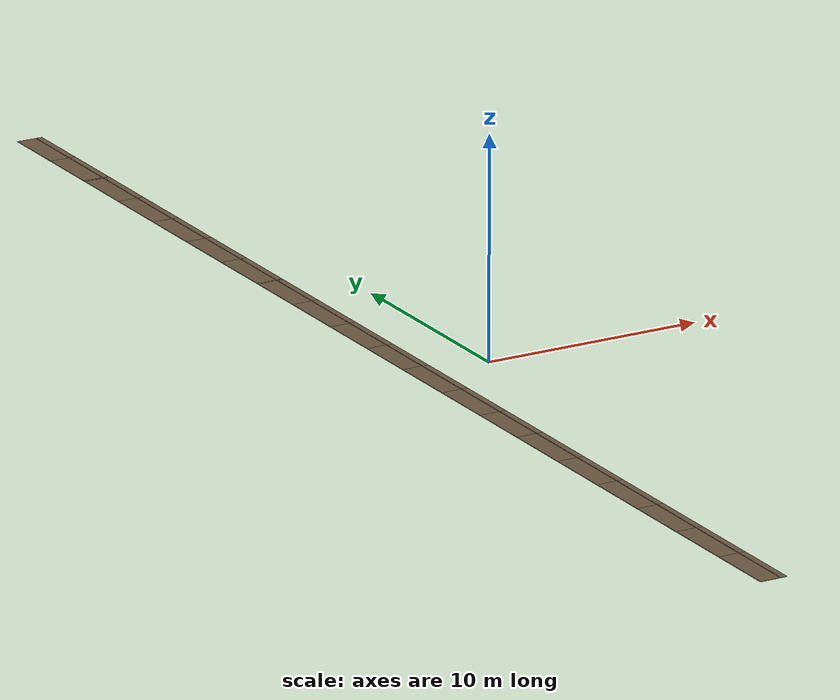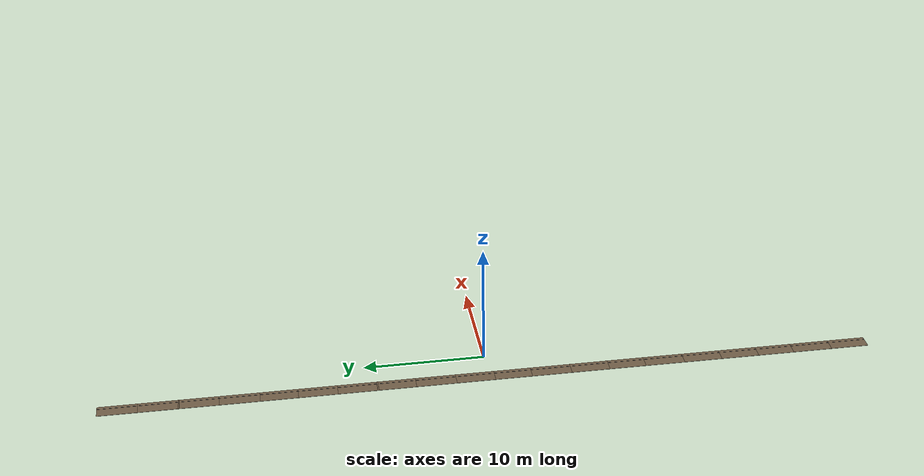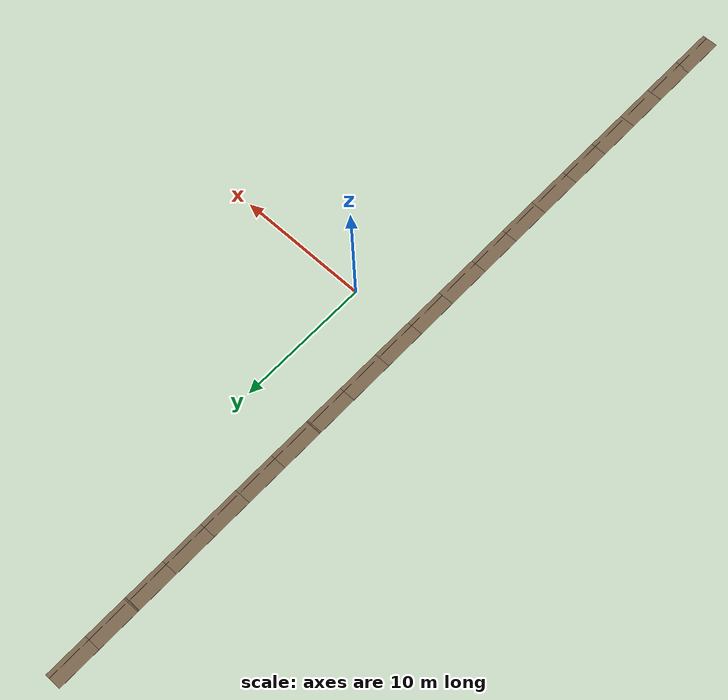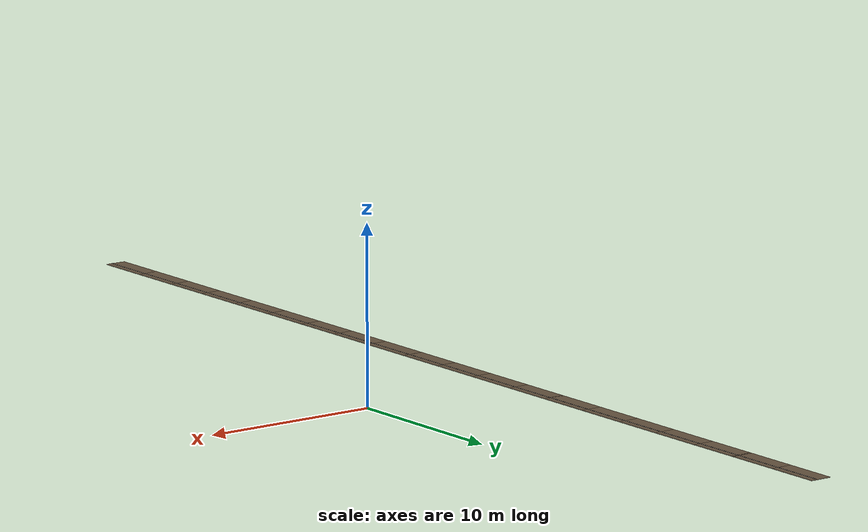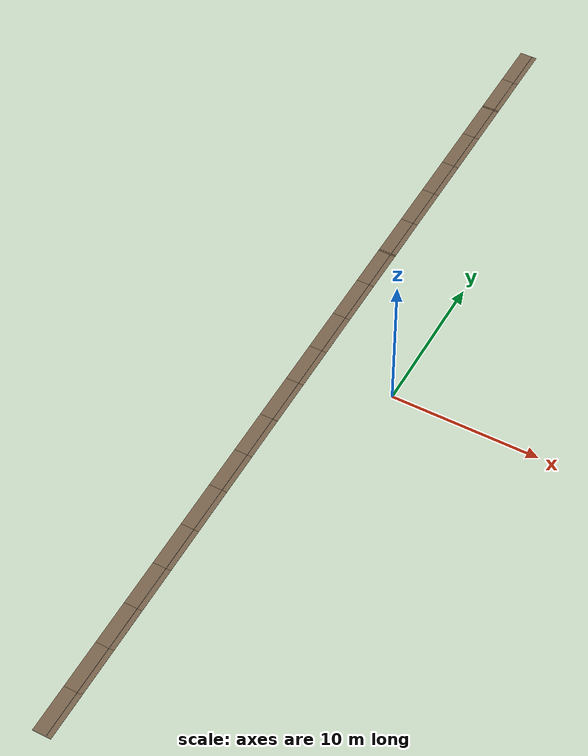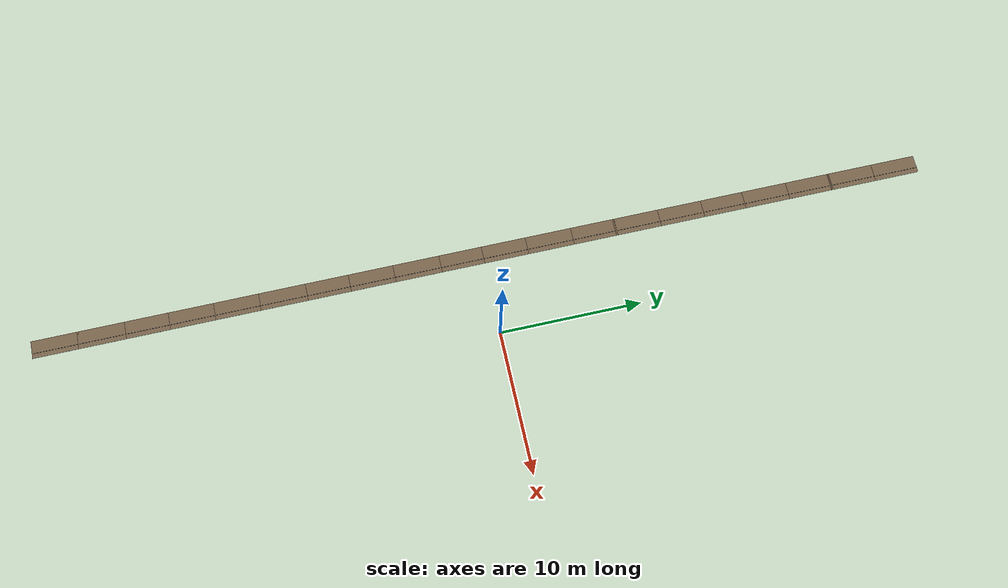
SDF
<sdf version="1.9">
 <world name="orchard_10x41">
  <model name="understory_r3">
   <static>true</static>
   <link name="link">
    <visual name="soil_1">
     <pose>-5.250 -29.450 1.633 -0.0000 0.0000 0.0000</pose>
     <geometry><box><size>1.2000 3.2240 0.0300</size></box></geometry>
     <material>
      <ambient>0.400 0.330 0.250 1</ambient>
      <diffuse>0.440 0.363 0.275 1</diffuse>
      <specular>0.120 0.099 0.075 1</specular>
     </material>
     <plugin filename="gz-sim-label-system" name="gz::sim::systems::Label"><label>66</label></plugin>
    </visual>
    <visual name="soil_2">
     <pose>-5.250 -26.350 1.633 0.0000 0.0000 0.0000</pose>
     <geometry><box><size>1.2000 3.2240 0.0300</size></box></geometry>
     <material>
      <ambient>0.400 0.330 0.250 1</ambient>
      <diffuse>0.440 0.363 0.275 1</diffuse>
      <specular>0.120 0.099 0.075 1</specular>
     </material>
     <plugin filename="gz-sim-label-system" name="gz::sim::systems::Label"><label>66</label></plugin>
    </visual>
    <visual name="soil_3">
     <pose>-5.250 -23.250 1.633 0.0004 0.0000 0.0000</pose>
     <geometry><box><size>1.2000 3.2240 0.0300</size></box></geometry>
     <material>
      <ambient>0.400 0.330 0.250 1</ambient>
      <diffuse>0.440 0.363 0.275 1</diffuse>
      <specular>0.120 0.099 0.075 1</specular>
     </material>
     <plugin filename="gz-sim-label-system" name="gz::sim::systems::Label"><label>66</label></plugin>
    </visual>
    <visual name="soil_4">
     <pose>-5.250 -20.150 1.634 0.0002 0.0000 0.0000</pose>
     <geometry><box><size>1.2000 3.2240 0.0300</size></box></geometry>
     <material>
      <ambient>0.400 0.330 0.250 1</ambient>
      <diffuse>0.440 0.363 0.275 1</diffuse>
      <specular>0.120 0.099 0.075 1</specular>
     </material>
     <plugin filename="gz-sim-label-system" name="gz::sim::systems::Label"><label>66</label></plugin>
    </visual>
    <visual name="soil_5">
     <pose>-5.250 -17.050 1.636 0.0008 0.0000 0.0000</pose>
     <geometry><box><size>1.2000 3.2240 0.0300</size></box></geometry>
     <material>
      <ambient>0.400 0.330 0.250 1</ambient>
      <diffuse>0.440 0.363 0.275 1</diffuse>
      <specular>0.120 0.099 0.075 1</specular>
     </material>
     <plugin filename="gz-sim-label-system" name="gz::sim::systems::Label"><label>66</label></plugin>
    </visual>
    <visual name="soil_6">
     <pose>-5.250 -13.950 1.638 0.0004 0.0000 0.0000</pose>
     <geometry><box><size>1.2000 3.2240 0.0300</size></box></geometry>
     <material>
      <ambient>0.400 0.330 0.250 1</ambient>
      <diffuse>0.440 0.363 0.275 1</diffuse>
      <specular>0.120 0.099 0.075 1</specular>
     </material>
     <plugin filename="gz-sim-label-system" name="gz::sim::systems::Label"><label>66</label></plugin>
    </visual>
    <visual name="soil_7">
     <pose>-5.250 -10.850 1.638 0.0002 0.0000 0.0000</pose>
     <geometry><box><size>1.2000 3.2240 0.0300</size></box></geometry>
     <material>
      <ambient>0.400 0.330 0.250 1</ambient>
      <diffuse>0.440 0.363 0.275 1</diffuse>
      <specular>0.120 0.099 0.075 1</specular>
     </material>
     <plugin filename="gz-sim-label-system" name="gz::sim::systems::Label"><label>66</label></plugin>
    </visual>
    <visual name="soil_8">
     <pose>-5.250 -7.750 1.637 -0.0010 0.0000 0.0000</pose>
     <geometry><box><size>1.2000 3.2240 0.0300</size></box></geometry>
     <material>
      <ambient>0.400 0.330 0.250 1</ambient>
      <diffuse>0.440 0.363 0.275 1</diffuse>
      <specular>0.120 0.099 0.075 1</specular>
     </material>
     <plugin filename="gz-sim-label-system" name="gz::sim::systems::Label"><label>66</label></plugin>
    </visual>
    <visual name="soil_9">
     <pose>-5.250 -4.650 1.635 -0.0006 0.0000 0.0000</pose>
     <geometry><box><size>1.2000 3.2240 0.0300</size></box></geometry>
     <material>
      <ambient>0.400 0.330 0.250 1</ambient>
      <diffuse>0.440 0.363 0.275 1</diffuse>
      <specular>0.120 0.099 0.075 1</specular>
     </material>
     <plugin filename="gz-sim-label-system" name="gz::sim::systems::Label"><label>66</label></plugin>
    </visual>
    <visual name="soil_10">
     <pose>-5.250 -1.550 1.633 -0.0004 0.0000 0.0000</pose>
     <geometry><box><size>1.2000 3.2240 0.0300</size></box></geometry>
     <material>
      <ambient>0.400 0.330 0.250 1</ambient>
      <diffuse>0.440 0.363 0.275 1</diffuse>
      <specular>0.120 0.099 0.075 1</specular>
     </material>
     <plugin filename="gz-sim-label-system" name="gz::sim::systems::Label"><label>66</label></plugin>
    </visual>
    <visual name="soil_11">
     <pose>-5.250 1.550 1.632 -0.0003 0.0000 0.0000</pose>
     <geometry><box><size>1.2000 3.2240 0.0300</size></box></geometry>
     <material>
      <ambient>0.400 0.330 0.250 1</ambient>
      <diffuse>0.440 0.363 0.275 1</diffuse>
      <specular>0.120 0.099 0.075 1</specular>
     </material>
     <plugin filename="gz-sim-label-system" name="gz::sim::systems::Label"><label>66</label></plugin>
    </visual>
    <visual name="soil_12">
     <pose>-5.250 4.650 1.631 -0.0005 0.0000 0.0000</pose>
     <geometry><box><size>1.2000 3.2240 0.0300</size></box></geometry>
     <material>
      <ambient>0.400 0.330 0.250 1</ambient>
      <diffuse>0.440 0.363 0.275 1</diffuse>
      <specular>0.120 0.099 0.075 1</specular>
     </material>
     <plugin filename="gz-sim-label-system" name="gz::sim::systems::Label"><label>66</label></plugin>
    </visual>
    <visual name="soil_13">
     <pose>-5.250 7.750 1.629 -0.0004 0.0000 0.0000</pose>
     <geometry><box><size>1.2000 3.2240 0.0300</size></box></geometry>
     <material>
      <ambient>0.400 0.330 0.250 1</ambient>
      <diffuse>0.440 0.363 0.275 1</diffuse>
      <specular>0.120 0.099 0.075 1</specular>
     </material>
     <plugin filename="gz-sim-label-system" name="gz::sim::systems::Label"><label>66</label></plugin>
    </visual>
    <visual name="soil_14">
     <pose>-5.250 10.850 1.627 -0.0009 0.0000 0.0000</pose>
     <geometry><box><size>1.2000 3.2240 0.0300</size></box></geometry>
     <material>
      <ambient>0.400 0.330 0.250 1</ambient>
      <diffuse>0.440 0.363 0.275 1</diffuse>
      <specular>0.120 0.099 0.075 1</specular>
     </material>
     <plugin filename="gz-sim-label-system" name="gz::sim::systems::Label"><label>66</label></plugin>
    </visual>
    <visual name="soil_15">
     <pose>-5.250 13.950 1.624 -0.0009 0.0000 0.0000</pose>
     <geometry><box><size>1.2000 3.2240 0.0300</size></box></geometry>
     <material>
      <ambient>0.400 0.330 0.250 1</ambient>
      <diffuse>0.440 0.363 0.275 1</diffuse>
      <specular>0.120 0.099 0.075 1</specular>
     </material>
     <plugin filename="gz-sim-label-system" name="gz::sim::systems::Label"><label>66</label></plugin>
    </visual>
    <visual name="soil_16">
     <pose>-5.250 17.050 1.622 -0.0003 0.0000 0.0000</pose>
     <geometry><box><size>1.2000 3.2240 0.0300</size></box></geometry>
     <material>
      <ambient>0.400 0.330 0.250 1</ambient>
      <diffuse>0.440 0.363 0.275 1</diffuse>
      <specular>0.120 0.099 0.075 1</specular>
     </material>
     <plugin filename="gz-sim-label-system" name="gz::sim::systems::Label"><label>66</label></plugin>
    </visual>
    <visual name="soil_17">
     <pose>-5.250 20.150 1.622 0.0002 0.0000 0.0000</pose>
     <geometry><box><size>1.2000 3.2240 0.0300</size></box></geometry>
     <material>
      <ambient>0.400 0.330 0.250 1</ambient>
      <diffuse>0.440 0.363 0.275 1</diffuse>
      <specular>0.120 0.099 0.075 1</specular>
     </material>
     <plugin filename="gz-sim-label-system" name="gz::sim::systems::Label"><label>66</label></plugin>
    </visual>
    <visual name="soil_18">
     <pose>-5.250 23.250 1.624 0.0011 0.0000 0.0000</pose>
     <geometry><box><size>1.2000 3.2240 0.0300</size></box></geometry>
     <material>
      <ambient>0.400 0.330 0.250 1</ambient>
      <diffuse>0.440 0.363 0.275 1</diffuse>
      <specular>0.120 0.099 0.075 1</specular>
     </material>
     <plugin filename="gz-sim-label-system" name="gz::sim::systems::Label"><label>66</label></plugin>
    </visual>
    <visual name="soil_19">
     <pose>-5.250 26.350 1.626 0.0002 0.0000 0.0000</pose>
     <geometry><box><size>1.2000 3.2240 0.0300</size></box></geometry>
     <material>
      <ambient>0.400 0.330 0.250 1</ambient>
      <diffuse>0.440 0.363 0.275 1</diffuse>
      <specular>0.120 0.099 0.075 1</specular>
     </material>
     <plugin filename="gz-sim-label-system" name="gz::sim::systems::Label"><label>66</label></plugin>
    </visual>
    <visual name="soil_20">
     <pose>-5.250 29.450 1.626 0.0001 0.0000 0.0000</pose>
     <geometry><box><size>1.2000 3.2240 0.0300</size></box></geometry>
     <material>
      <ambient>0.400 0.330 0.250 1</ambient>
      <diffuse>0.440 0.363 0.275 1</diffuse>
      <specular>0.120 0.099 0.075 1</specular>
     </material>
     <plugin filename="gz-sim-label-system" name="gz::sim::systems::Label"><label>66</label></plugin>
    </visual>
    <visual name="drip_21">
     <pose>-4.970 -29.450 1.663 1.5708 0.0000 0.0000</pose>
     <geometry><cylinder><radius>0.0110</radius><length>3.1620</length></cylinder></geometry>
     <material>
      <ambient>0.100 0.100 0.110 1</ambient>
      <diffuse>0.110 0.110 0.121 1</diffuse>
      <specular>0.030 0.030 0.033 1</specular>
     </material>
     <plugin filename="gz-sim-label-system" name="gz::sim::systems::Label"><label>67</label></plugin>
    </visual>
    <visual name="drip_22">
     <pose>-4.970 -26.350 1.663 1.5708 0.0000 0.0000</pose>
     <geometry><cylinder><radius>0.0110</radius><length>3.1620</length></cylinder></geometry>
     <material>
      <ambient>0.100 0.100 0.110 1</ambient>
      <diffuse>0.110 0.110 0.121 1</diffuse>
      <specular>0.030 0.030 0.033 1</specular>
     </material>
     <plugin filename="gz-sim-label-system" name="gz::sim::systems::Label"><label>67</label></plugin>
    </visual>
    <visual name="drip_23">
     <pose>-4.970 -23.250 1.663 1.5712 0.0000 0.0000</pose>
     <geometry><cylinder><radius>0.0110</radius><length>3.1620</length></cylinder></geometry>
     <material>
      <ambient>0.100 0.100 0.110 1</ambient>
      <diffuse>0.110 0.110 0.121 1</diffuse>
      <specular>0.030 0.030 0.033 1</specular>
     </material>
     <plugin filename="gz-sim-label-system" name="gz::sim::systems::Label"><label>67</label></plugin>
    </visual>
    <visual name="drip_24">
     <pose>-4.970 -20.150 1.664 1.5710 0.0000 0.0000</pose>
     <geometry><cylinder><radius>0.0110</radius><length>3.1620</length></cylinder></geometry>
     <material>
      <ambient>0.100 0.100 0.110 1</ambient>
      <diffuse>0.110 0.110 0.121 1</diffuse>
      <specular>0.030 0.030 0.033 1</specular>
     </material>
     <plugin filename="gz-sim-label-system" name="gz::sim::systems::Label"><label>67</label></plugin>
    </visual>
    <visual name="drip_25">
     <pose>-4.970 -17.050 1.666 1.5716 0.0000 0.0000</pose>
     <geometry><cylinder><radius>0.0110</radius><length>3.1620</length></cylinder></geometry>
     <material>
      <ambient>0.100 0.100 0.110 1</ambient>
      <diffuse>0.110 0.110 0.121 1</diffuse>
      <specular>0.030 0.030 0.033 1</specular>
     </material>
     <plugin filename="gz-sim-label-system" name="gz::sim::systems::Label"><label>67</label></plugin>
    </visual>
    <visual name="drip_26">
     <pose>-4.970 -13.950 1.668 1.5712 0.0000 0.0000</pose>
     <geometry><cylinder><radius>0.0110</radius><length>3.1620</length></cylinder></geometry>
     <material>
      <ambient>0.100 0.100 0.110 1</ambient>
      <diffuse>0.110 0.110 0.121 1</diffuse>
      <specular>0.030 0.030 0.033 1</specular>
     </material>
     <plugin filename="gz-sim-label-system" name="gz::sim::systems::Label"><label>67</label></plugin>
    </visual>
    <visual name="drip_27">
     <pose>-4.970 -10.850 1.668 1.5710 0.0000 0.0000</pose>
     <geometry><cylinder><radius>0.0110</radius><length>3.1620</length></cylinder></geometry>
     <material>
      <ambient>0.100 0.100 0.110 1</ambient>
      <diffuse>0.110 0.110 0.121 1</diffuse>
      <specular>0.030 0.030 0.033 1</specular>
     </material>
     <plugin filename="gz-sim-label-system" name="gz::sim::systems::Label"><label>67</label></plugin>
    </visual>
    <visual name="drip_28">
     <pose>-4.970 -7.750 1.667 1.5698 0.0000 0.0000</pose>
     <geometry><cylinder><radius>0.0110</radius><length>3.1620</length></cylinder></geometry>
     <material>
      <ambient>0.100 0.100 0.110 1</ambient>
      <diffuse>0.110 0.110 0.121 1</diffuse>
      <specular>0.030 0.030 0.033 1</specular>
     </material>
     <plugin filename="gz-sim-label-system" name="gz::sim::systems::Label"><label>67</label></plugin>
    </visual>
    <visual name="drip_29">
     <pose>-4.970 -4.650 1.665 1.5702 0.0000 0.0000</pose>
     <geometry><cylinder><radius>0.0110</radius><length>3.1620</length></cylinder></geometry>
     <material>
      <ambient>0.100 0.100 0.110 1</ambient>
      <diffuse>0.110 0.110 0.121 1</diffuse>
      <specular>0.030 0.030 0.033 1</specular>
     </material>
     <plugin filename="gz-sim-label-system" name="gz::sim::systems::Label"><label>67</label></plugin>
    </visual>
    <visual name="drip_30">
     <pose>-4.970 -1.550 1.663 1.5704 0.0000 0.0000</pose>
     <geometry><cylinder><radius>0.0110</radius><length>3.1620</length></cylinder></geometry>
     <material>
      <ambient>0.100 0.100 0.110 1</ambient>
      <diffuse>0.110 0.110 0.121 1</diffuse>
      <specular>0.030 0.030 0.033 1</specular>
     </material>
     <plugin filename="gz-sim-label-system" name="gz::sim::systems::Label"><label>67</label></plugin>
    </visual>
    <visual name="drip_31">
     <pose>-4.970 1.550 1.662 1.5705 0.0000 0.0000</pose>
     <geometry><cylinder><radius>0.0110</radius><length>3.1620</length></cylinder></geometry>
     <material>
      <ambient>0.100 0.100 0.110 1</ambient>
      <diffuse>0.110 0.110 0.121 1</diffuse>
      <specular>0.030 0.030 0.033 1</specular>
     </material>
     <plugin filename="gz-sim-label-system" name="gz::sim::systems::Label"><label>67</label></plugin>
    </visual>
    <visual name="drip_32">
     <pose>-4.970 4.650 1.661 1.5703 0.0000 0.0000</pose>
     <geometry><cylinder><radius>0.0110</radius><length>3.1620</length></cylinder></geometry>
     <material>
      <ambient>0.100 0.100 0.110 1</ambient>
      <diffuse>0.110 0.110 0.121 1</diffuse>
      <specular>0.030 0.030 0.033 1</specular>
     </material>
     <plugin filename="gz-sim-label-system" name="gz::sim::systems::Label"><label>67</label></plugin>
    </visual>
    <visual name="drip_33">
     <pose>-4.970 7.750 1.659 1.5704 0.0000 0.0000</pose>
     <geometry><cylinder><radius>0.0110</radius><length>3.1620</length></cylinder></geometry>
     <material>
      <ambient>0.100 0.100 0.110 1</ambient>
      <diffuse>0.110 0.110 0.121 1</diffuse>
      <specular>0.030 0.030 0.033 1</specular>
     </material>
     <plugin filename="gz-sim-label-system" name="gz::sim::systems::Label"><label>67</label></plugin>
    </visual>
    <visual name="drip_34">
     <pose>-4.970 10.850 1.657 1.5699 0.0000 0.0000</pose>
     <geometry><cylinder><radius>0.0110</radius><length>3.1620</length></cylinder></geometry>
     <material>
      <ambient>0.100 0.100 0.110 1</ambient>
      <diffuse>0.110 0.110 0.121 1</diffuse>
      <specular>0.030 0.030 0.033 1</specular>
     </material>
     <plugin filename="gz-sim-label-system" name="gz::sim::systems::Label"><label>67</label></plugin>
    </visual>
    <visual name="drip_35">
     <pose>-4.970 13.950 1.654 1.5699 0.0000 0.0000</pose>
     <geometry><cylinder><radius>0.0110</radius><length>3.1620</length></cylinder></geometry>
     <material>
      <ambient>0.100 0.100 0.110 1</ambient>
      <diffuse>0.110 0.110 0.121 1</diffuse>
      <specular>0.030 0.030 0.033 1</specular>
     </material>
     <plugin filename="gz-sim-label-system" name="gz::sim::systems::Label"><label>67</label></plugin>
    </visual>
    <visual name="drip_36">
     <pose>-4.970 17.050 1.652 1.5705 0.0000 0.0000</pose>
     <geometry><cylinder><radius>0.0110</radius><length>3.1620</length></cylinder></geometry>
     <material>
      <ambient>0.100 0.100 0.110 1</ambient>
      <diffuse>0.110 0.110 0.121 1</diffuse>
      <specular>0.030 0.030 0.033 1</specular>
     </material>
     <plugin filename="gz-sim-label-system" name="gz::sim::systems::Label"><label>67</label></plugin>
    </visual>
    <visual name="drip_37">
     <pose>-4.970 20.150 1.652 1.5710 0.0000 0.0000</pose>
     <geometry><cylinder><radius>0.0110</radius><length>3.1620</length></cylinder></geometry>
     <material>
      <ambient>0.100 0.100 0.110 1</ambient>
      <diffuse>0.110 0.110 0.121 1</diffuse>
      <specular>0.030 0.030 0.033 1</specular>
     </material>
     <plugin filename="gz-sim-label-system" name="gz::sim::systems::Label"><label>67</label></plugin>
    </visual>
    <visual name="drip_38">
     <pose>-4.970 23.250 1.654 1.5719 0.0000 0.0000</pose>
     <geometry><cylinder><radius>0.0110</radius><length>3.1620</length></cylinder></geometry>
     <material>
      <ambient>0.100 0.100 0.110 1</ambient>
      <diffuse>0.110 0.110 0.121 1</diffuse>
      <specular>0.030 0.030 0.033 1</specular>
     </material>
     <plugin filename="gz-sim-label-system" name="gz::sim::systems::Label"><label>67</label></plugin>
    </visual>
    <visual name="drip_39">
     <pose>-4.970 26.350 1.656 1.5710 0.0000 0.0000</pose>
     <geometry><cylinder><radius>0.0110</radius><length>3.1620</length></cylinder></geometry>
     <material>
      <ambient>0.100 0.100 0.110 1</ambient>
      <diffuse>0.110 0.110 0.121 1</diffuse>
      <specular>0.030 0.030 0.033 1</specular>
     </material>
     <plugin filename="gz-sim-label-system" name="gz::sim::systems::Label"><label>67</label></plugin>
    </visual>
    <visual name="drip_40">
     <pose>-4.970 29.450 1.656 1.5709 0.0000 0.0000</pose>
     <geometry><cylinder><radius>0.0110</radius><length>3.1620</length></cylinder></geometry>
     <material>
      <ambient>0.100 0.100 0.110 1</ambient>
      <diffuse>0.110 0.110 0.121 1</diffuse>
      <specular>0.030 0.030 0.033 1</specular>
     </material>
     <plugin filename="gz-sim-label-system" name="gz::sim::systems::Label"><label>67</label></plugin>
    </visual>
   </link>
  </model>
 </world>
</sdf>
